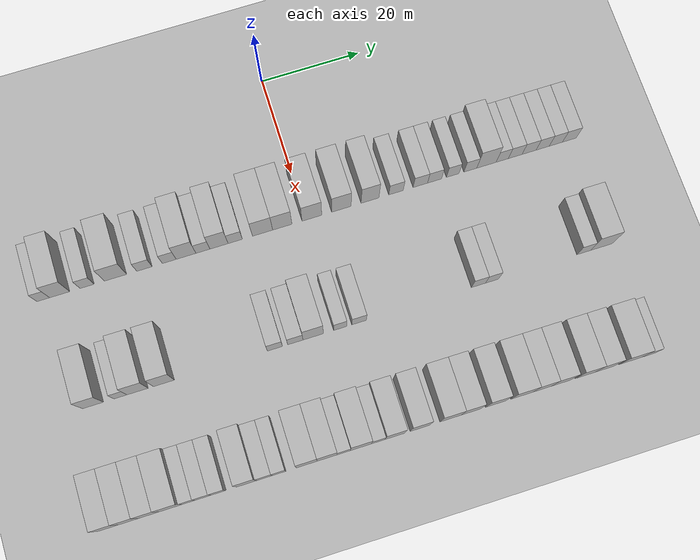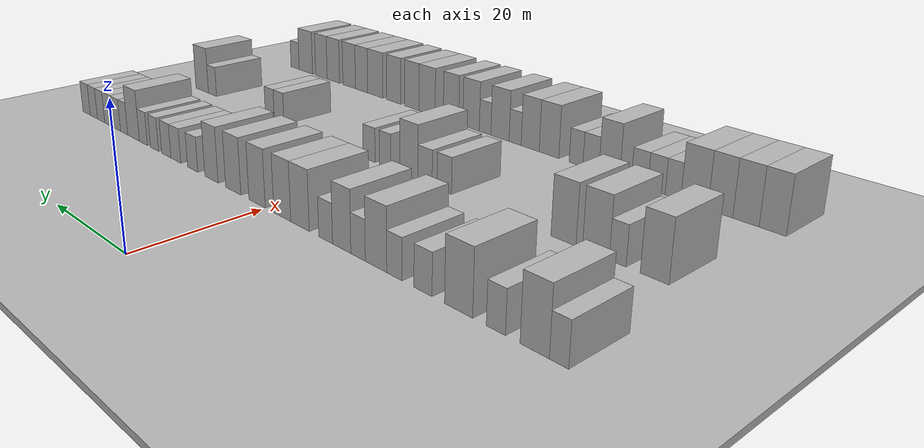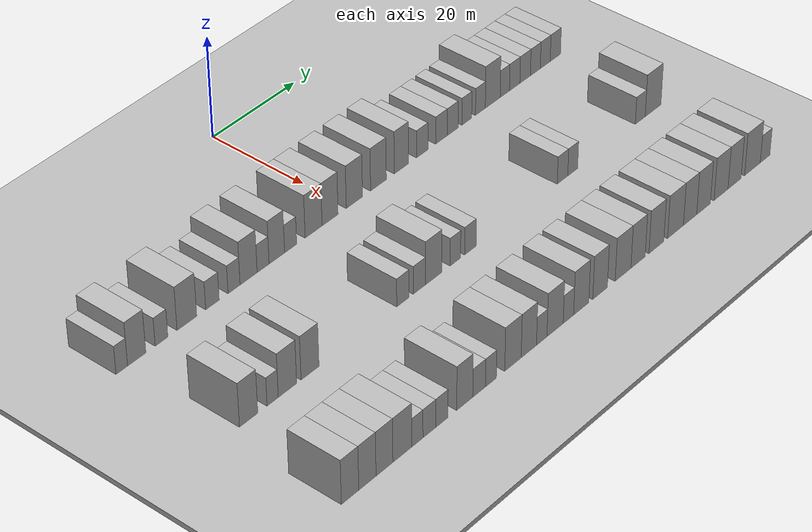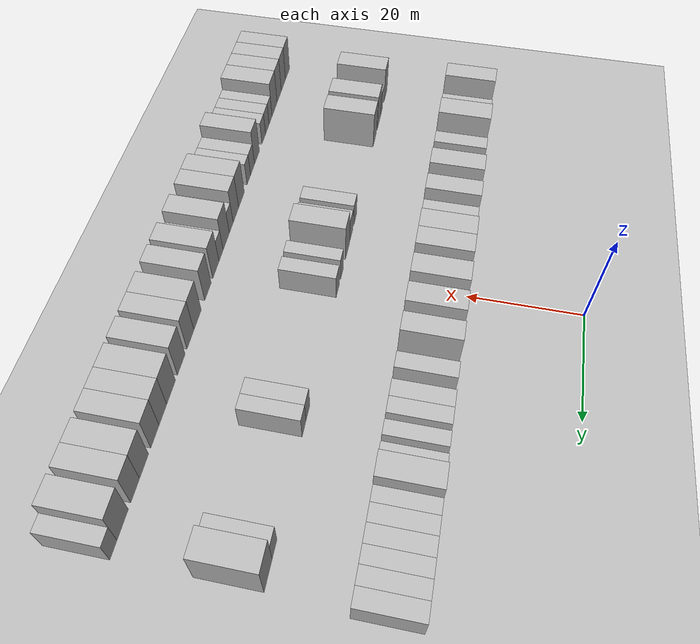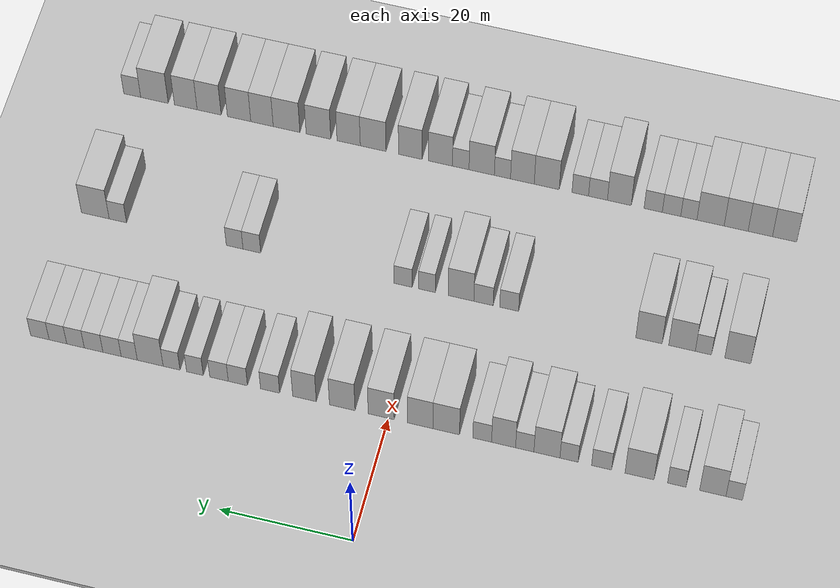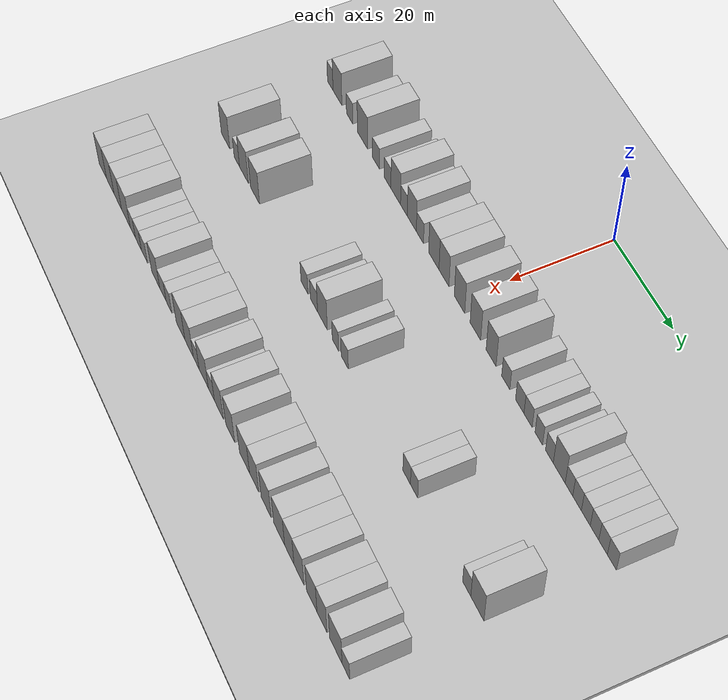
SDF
<sdf version="1.6">
 <world name="default">
  <include><name>ground_plane_1</name><uri>model://HANNAS_ground_plane</uri></include>
  <include>
   <name>ground_plane_2</name>
   <uri>model://HANNAS_ground_plane</uri>
   <pose>100 0 0  0 0 0</pose>
  </include>
  <model name="building_44">
   <static>1</static>
   <pose>25.0000 -51.6898 0 0.000000 0.000000 0.000000</pose>
   <link name="link">
    <pose>0 0 3.00 0 0 0</pose>
    <collision name="collision"><geometry><box><size>10.0000 2.4513 6.0000</size></box></geometry></collision>
    <visual name="visual">
     <cast_shadows>0</cast_shadows>
     <geometry><box><size>10.0000 2.4513 6.0000</size></box></geometry>
     <material>
      <script>
       <uri>model://HANNAS_wall/materials/scripts</uri>
       <uri>model://HANNAS_wall/materials/textures</uri>
       <name>vrc/HANNAS_wall</name>
      </script>
     </material>
    </visual>
   </link>
  </model>
  <model name="building_45">
   <static>1</static>
   <pose>25.0000 -48.5208 0 0.000000 0.000000 0.000000</pose>
   <link name="link">
    <pose>0 0 4.50 0 0 0</pose>
    <collision name="collision"><geometry><box><size>10.0000 3.8866 9.0000</size></box></geometry></collision>
    <visual name="visual">
     <cast_shadows>0</cast_shadows>
     <geometry><box><size>10.0000 3.8866 9.0000</size></box></geometry>
     <material>
      <script>
       <uri>model://HANNAS_wall/materials/scripts</uri>
       <uri>model://HANNAS_wall/materials/textures</uri>
       <name>vrc/HANNAS_wall</name>
      </script>
     </material>
    </visual>
   </link>
  </model>
  <model name="building_46">
   <static>1</static>
   <pose>25.0000 -43.2080 0 0.000000 0.000000 0.000000</pose>
   <link name="link">
    <pose>0 0 3.00 0 0 0</pose>
    <collision name="collision"><geometry><box><size>10.0000 2.7390 6.0000</size></box></geometry></collision>
    <visual name="visual">
     <cast_shadows>0</cast_shadows>
     <geometry><box><size>10.0000 2.7390 6.0000</size></box></geometry>
     <material>
      <script>
       <uri>model://HANNAS_wall/materials/scripts</uri>
       <uri>model://HANNAS_wall/materials/textures</uri>
       <name>vrc/HANNAS_wall</name>
      </script>
     </material>
    </visual>
   </link>
  </model>
  <model name="building_47">
   <static>1</static>
   <pose>25.0000 -37.6801 0 0.000000 0.000000 0.000000</pose>
   <link name="link">
    <pose>0 0 4.50 0 0 0</pose>
    <collision name="collision"><geometry><box><size>10.0000 4.3170 9.0000</size></box></geometry></collision>
    <visual name="visual">
     <cast_shadows>0</cast_shadows>
     <geometry><box><size>10.0000 4.3170 9.0000</size></box></geometry>
     <material>
      <script>
       <uri>model://HANNAS_wall/materials/scripts</uri>
       <uri>model://HANNAS_wall/materials/textures</uri>
       <name>vrc/HANNAS_wall</name>
      </script>
     </material>
    </visual>
   </link>
  </model>
  <model name="building_48">
   <static>1</static>
   <pose>25.0000 -32.0281 0 0.000000 0.000000 0.000000</pose>
   <link name="link">
    <pose>0 0 3.00 0 0 0</pose>
    <collision name="collision"><geometry><box><size>10.0000 2.9870 6.0000</size></box></geometry></collision>
    <visual name="visual">
     <cast_shadows>0</cast_shadows>
     <geometry><box><size>10.0000 2.9870 6.0000</size></box></geometry>
     <material>
      <script>
       <uri>model://HANNAS_wall/materials/scripts</uri>
       <uri>model://HANNAS_wall/materials/textures</uri>
       <name>vrc/HANNAS_wall</name>
      </script>
     </material>
    </visual>
   </link>
  </model>
  <model name="building_49">
   <static>1</static>
   <pose>25.0000 -27.1794 0 0.000000 0.000000 0.000000</pose>
   <link name="link">
    <pose>0 0 3.00 0 0 0</pose>
    <collision name="collision"><geometry><box><size>10.0000 2.7104 6.0000</size></box></geometry></collision>
    <visual name="visual">
     <cast_shadows>0</cast_shadows>
     <geometry><box><size>10.0000 2.7104 6.0000</size></box></geometry>
     <material>
      <script>
       <uri>model://HANNAS_wall/materials/scripts</uri>
       <uri>model://HANNAS_wall/materials/textures</uri>
       <name>vrc/HANNAS_wall</name>
      </script>
     </material>
    </visual>
   </link>
  </model>
  <model name="building_50">
   <static>1</static>
   <pose>25.0000 -23.8731 0 0.000000 0.000000 0.000000</pose>
   <link name="link">
    <pose>0 0 4.50 0 0 0</pose>
    <collision name="collision"><geometry><box><size>10.0000 3.9021 9.0000</size></box></geometry></collision>
    <visual name="visual">
     <cast_shadows>0</cast_shadows>
     <geometry><box><size>10.0000 3.9021 9.0000</size></box></geometry>
     <material>
      <script>
       <uri>model://HANNAS_wall/materials/scripts</uri>
       <uri>model://HANNAS_wall/materials/textures</uri>
       <name>vrc/HANNAS_wall</name>
      </script>
     </material>
    </visual>
   </link>
  </model>
  <model name="building_51">
   <static>1</static>
   <pose>25.0000 -20.5506 0 0.000000 0.000000 0.000000</pose>
   <link name="link">
    <pose>0 0 3.00 0 0 0</pose>
    <collision name="collision"><geometry><box><size>10.0000 2.7430 6.0000</size></box></geometry></collision>
    <visual name="visual">
     <cast_shadows>0</cast_shadows>
     <geometry><box><size>10.0000 2.7430 6.0000</size></box></geometry>
     <material>
      <script>
       <uri>model://HANNAS_wall/materials/scripts</uri>
       <uri>model://HANNAS_wall/materials/textures</uri>
       <name>vrc/HANNAS_wall</name>
      </script>
     </material>
    </visual>
   </link>
  </model>
  <model name="building_52">
   <static>1</static>
   <pose>25.0000 -17.3764 0 0.000000 0.000000 0.000000</pose>
   <link name="link">
    <pose>0 0 4.50 0 0 0</pose>
    <collision name="collision"><geometry><box><size>10.0000 3.6055 9.0000</size></box></geometry></collision>
    <visual name="visual">
     <cast_shadows>0</cast_shadows>
     <geometry><box><size>10.0000 3.6055 9.0000</size></box></geometry>
     <material>
      <script>
       <uri>model://HANNAS_wall/materials/scripts</uri>
       <uri>model://HANNAS_wall/materials/textures</uri>
       <name>vrc/HANNAS_wall</name>
      </script>
     </material>
    </visual>
   </link>
  </model>
  <model name="building_53">
   <static>1</static>
   <pose>25.0000 -14.1619 0 0.000000 0.000000 0.000000</pose>
   <link name="link">
    <pose>0 0 3.00 0 0 0</pose>
    <collision name="collision"><geometry><box><size>10.0000 2.8235 6.0000</size></box></geometry></collision>
    <visual name="visual">
     <cast_shadows>0</cast_shadows>
     <geometry><box><size>10.0000 2.8235 6.0000</size></box></geometry>
     <material>
      <script>
       <uri>model://HANNAS_wall/materials/scripts</uri>
       <uri>model://HANNAS_wall/materials/textures</uri>
       <name>vrc/HANNAS_wall</name>
      </script>
     </material>
    </visual>
   </link>
  </model>
  <model name="building_54">
   <static>1</static>
   <pose>25.0000 -8.7398 0 0.000000 0.000000 0.000000</pose>
   <link name="link">
    <pose>0 0 4.50 0 0 0</pose>
    <collision name="collision"><geometry><box><size>10.0000 4.0207 9.0000</size></box></geometry></collision>
    <visual name="visual">
     <cast_shadows>0</cast_shadows>
     <geometry><box><size>10.0000 4.0207 9.0000</size></box></geometry>
     <material>
      <script>
       <uri>model://HANNAS_wall/materials/scripts</uri>
       <uri>model://HANNAS_wall/materials/textures</uri>
       <name>vrc/HANNAS_wall</name>
      </script>
     </material>
    </visual>
   </link>
  </model>
  <model name="building_55">
   <static>1</static>
   <pose>25.0000 -4.8081 0 0.000000 0.000000 0.000000</pose>
   <link name="link">
    <pose>0 0 4.50 0 0 0</pose>
    <collision name="collision"><geometry><box><size>10.0000 3.8428 9.0000</size></box></geometry></collision>
    <visual name="visual">
     <cast_shadows>0</cast_shadows>
     <geometry><box><size>10.0000 3.8428 9.0000</size></box></geometry>
     <material>
      <script>
       <uri>model://HANNAS_wall/materials/scripts</uri>
       <uri>model://HANNAS_wall/materials/textures</uri>
       <name>vrc/HANNAS_wall</name>
      </script>
     </material>
    </visual>
   </link>
  </model>
  <model name="building_56">
   <static>1</static>
   <pose>25.0000 1.0844 0 0.000000 0.000000 0.000000</pose>
   <link name="link">
    <pose>0 0 4.50 0 0 0</pose>
    <collision name="collision"><geometry><box><size>10.0000 3.9421 9.0000</size></box></geometry></collision>
    <visual name="visual">
     <cast_shadows>0</cast_shadows>
     <geometry><box><size>10.0000 3.9421 9.0000</size></box></geometry>
     <material>
      <script>
       <uri>model://HANNAS_wall/materials/scripts</uri>
       <uri>model://HANNAS_wall/materials/textures</uri>
       <name>vrc/HANNAS_wall</name>
      </script>
     </material>
    </visual>
   </link>
  </model>
  <model name="building_57">
   <static>1</static>
   <pose>25.0000 7.0039 0 0.000000 0.000000 0.000000</pose>
   <link name="link">
    <pose>0 0 4.50 0 0 0</pose>
    <collision name="collision"><geometry><box><size>10.0000 3.8968 9.0000</size></box></geometry></collision>
    <visual name="visual">
     <cast_shadows>0</cast_shadows>
     <geometry><box><size>10.0000 3.8968 9.0000</size></box></geometry>
     <material>
      <script>
       <uri>model://HANNAS_wall/materials/scripts</uri>
       <uri>model://HANNAS_wall/materials/textures</uri>
       <name>vrc/HANNAS_wall</name>
      </script>
     </material>
    </visual>
   </link>
  </model>
  <model name="building_58">
   <static>1</static>
   <pose>25.0000 12.7543 0 0.000000 0.000000 0.000000</pose>
   <link name="link">
    <pose>0 0 4.50 0 0 0</pose>
    <collision name="collision"><geometry><box><size>10.0000 3.6041 9.0000</size></box></geometry></collision>
    <visual name="visual">
     <cast_shadows>0</cast_shadows>
     <geometry><box><size>10.0000 3.6041 9.0000</size></box></geometry>
     <material>
      <script>
       <uri>model://HANNAS_wall/materials/scripts</uri>
       <uri>model://HANNAS_wall/materials/textures</uri>
       <name>vrc/HANNAS_wall</name>
      </script>
     </material>
    </visual>
   </link>
  </model>
  <model name="building_59">
   <static>1</static>
   <pose>25.0000 18.0167 0 0.000000 0.000000 0.000000</pose>
   <link name="link">
    <pose>0 0 3.00 0 0 0</pose>
    <collision name="collision"><geometry><box><size>10.0000 2.9206 6.0000</size></box></geometry></collision>
    <visual name="visual">
     <cast_shadows>0</cast_shadows>
     <geometry><box><size>10.0000 2.9206 6.0000</size></box></geometry>
     <material>
      <script>
       <uri>model://HANNAS_wall/materials/scripts</uri>
       <uri>model://HANNAS_wall/materials/textures</uri>
       <name>vrc/HANNAS_wall</name>
      </script>
     </material>
    </visual>
   </link>
  </model>
  <model name="building_60">
   <static>1</static>
   <pose>25.0000 22.9509 0 0.000000 0.000000 0.000000</pose>
   <link name="link">
    <pose>0 0 3.00 0 0 0</pose>
    <collision name="collision"><geometry><box><size>10.0000 2.9479 6.0000</size></box></geometry></collision>
    <visual name="visual">
     <cast_shadows>0</cast_shadows>
     <geometry><box><size>10.0000 2.9479 6.0000</size></box></geometry>
     <material>
      <script>
       <uri>model://HANNAS_wall/materials/scripts</uri>
       <uri>model://HANNAS_wall/materials/textures</uri>
       <name>vrc/HANNAS_wall</name>
      </script>
     </material>
    </visual>
   </link>
  </model>
  <model name="building_61">
   <static>1</static>
   <pose>25.0000 25.8441 0 0.000000 0.000000 0.000000</pose>
   <link name="link">
    <pose>0 0 3.00 0 0 0</pose>
    <collision name="collision"><geometry><box><size>10.0000 2.8384 6.0000</size></box></geometry></collision>
    <visual name="visual">
     <cast_shadows>0</cast_shadows>
     <geometry><box><size>10.0000 2.8384 6.0000</size></box></geometry>
     <material>
      <script>
       <uri>model://HANNAS_wall/materials/scripts</uri>
       <uri>model://HANNAS_wall/materials/textures</uri>
       <name>vrc/HANNAS_wall</name>
      </script>
     </material>
    </visual>
   </link>
  </model>
  <model name="building_62">
   <static>1</static>
   <pose>25.0000 29.5517 0 0.000000 0.000000 0.000000</pose>
   <link name="link">
    <pose>0 0 3.00 0 0 0</pose>
    <collision name="collision"><geometry><box><size>10.0000 2.5768 6.0000</size></box></geometry></collision>
    <visual name="visual">
     <cast_shadows>0</cast_shadows>
     <geometry><box><size>10.0000 2.5768 6.0000</size></box></geometry>
     <material>
      <script>
       <uri>model://HANNAS_wall/materials/scripts</uri>
       <uri>model://HANNAS_wall/materials/textures</uri>
       <name>vrc/HANNAS_wall</name>
      </script>
     </material>
    </visual>
   </link>
  </model>
  <model name="building_63">
   <static>1</static>
   <pose>25.0000 33.1496 0 0.000000 0.000000 0.000000</pose>
   <link name="link">
    <pose>0 0 3.00 0 0 0</pose>
    <collision name="collision"><geometry><box><size>10.0000 2.6190 6.0000</size></box></geometry></collision>
    <visual name="visual">
     <cast_shadows>0</cast_shadows>
     <geometry><box><size>10.0000 2.6190 6.0000</size></box></geometry>
     <material>
      <script>
       <uri>model://HANNAS_wall/materials/scripts</uri>
       <uri>model://HANNAS_wall/materials/textures</uri>
       <name>vrc/HANNAS_wall</name>
      </script>
     </material>
    </visual>
   </link>
  </model>
  <model name="building_64">
   <static>1</static>
   <pose>25.0000 36.4508 0 0.000000 0.000000 0.000000</pose>
   <link name="link">
    <pose>0 0 4.50 0 0 0</pose>
    <collision name="collision"><geometry><box><size>10.0000 3.9833 9.0000</size></box></geometry></collision>
    <visual name="visual">
     <cast_shadows>0</cast_shadows>
     <geometry><box><size>10.0000 3.9833 9.0000</size></box></geometry>
     <material>
      <script>
       <uri>model://HANNAS_wall/materials/scripts</uri>
       <uri>model://HANNAS_wall/materials/textures</uri>
       <name>vrc/HANNAS_wall</name>
      </script>
     </material>
    </visual>
   </link>
  </model>
  <model name="building_65">
   <static>1</static>
   <pose>25.0000 39.6901 0 0.000000 0.000000 0.000000</pose>
   <link name="link">
    <pose>0 0 3.00 0 0 0</pose>
    <collision name="collision"><geometry><box><size>10.0000 2.4955 6.0000</size></box></geometry></collision>
    <visual name="visual">
     <cast_shadows>0</cast_shadows>
     <geometry><box><size>10.0000 2.4955 6.0000</size></box></geometry>
     <material>
      <script>
       <uri>model://HANNAS_wall/materials/scripts</uri>
       <uri>model://HANNAS_wall/materials/textures</uri>
       <name>vrc/HANNAS_wall</name>
      </script>
     </material>
    </visual>
   </link>
  </model>
  <model name="building_66">
   <static>1</static>
   <pose>25.0000 42.3571 0 0.000000 0.000000 0.000000</pose>
   <link name="link">
    <pose>0 0 3.00 0 0 0</pose>
    <collision name="collision"><geometry><box><size>10.0000 2.8384 6.0000</size></box></geometry></collision>
    <visual name="visual">
     <cast_shadows>0</cast_shadows>
     <geometry><box><size>10.0000 2.8384 6.0000</size></box></geometry>
     <material>
      <script>
       <uri>model://HANNAS_wall/materials/scripts</uri>
       <uri>model://HANNAS_wall/materials/textures</uri>
       <name>vrc/HANNAS_wall</name>
      </script>
     </material>
    </visual>
   </link>
  </model>
  <model name="building_67">
   <static>1</static>
   <pose>25.0000 45.2196 0 0.000000 0.000000 0.000000</pose>
   <link name="link">
    <pose>0 0 3.00 0 0 0</pose>
    <collision name="collision"><geometry><box><size>10.0000 2.8865 6.0000</size></box></geometry></collision>
    <visual name="visual">
     <cast_shadows>0</cast_shadows>
     <geometry><box><size>10.0000 2.8865 6.0000</size></box></geometry>
     <material>
      <script>
       <uri>model://HANNAS_wall/materials/scripts</uri>
       <uri>model://HANNAS_wall/materials/textures</uri>
       <name>vrc/HANNAS_wall</name>
      </script>
     </material>
    </visual>
   </link>
  </model>
  <model name="building_68">
   <static>1</static>
   <pose>25.0000 48.0282 0 0.000000 0.000000 0.000000</pose>
   <link name="link">
    <pose>0 0 3.00 0 0 0</pose>
    <collision name="collision"><geometry><box><size>10.0000 2.7308 6.0000</size></box></geometry></collision>
    <visual name="visual">
     <cast_shadows>0</cast_shadows>
     <geometry><box><size>10.0000 2.7308 6.0000</size></box></geometry>
     <material>
      <script>
       <uri>model://HANNAS_wall/materials/scripts</uri>
       <uri>model://HANNAS_wall/materials/textures</uri>
       <name>vrc/HANNAS_wall</name>
      </script>
     </material>
    </visual>
   </link>
  </model>
  <model name="building_69">
   <static>1</static>
   <pose>25.0000 50.7630 0 0.000000 0.000000 0.000000</pose>
   <link name="link">
    <pose>0 0 3.00 0 0 0</pose>
    <collision name="collision"><geometry><box><size>10.0000 2.7389 6.0000</size></box></geometry></collision>
    <visual name="visual">
     <cast_shadows>0</cast_shadows>
     <geometry><box><size>10.0000 2.7389 6.0000</size></box></geometry>
     <material>
      <script>
       <uri>model://HANNAS_wall/materials/scripts</uri>
       <uri>model://HANNAS_wall/materials/textures</uri>
       <name>vrc/HANNAS_wall</name>
      </script>
     </material>
    </visual>
   </link>
  </model>
  <model name="building_70">
   <static>1</static>
   <pose>25.0000 53.5651 0 0.000000 0.000000 0.000000</pose>
   <link name="link">
    <pose>0 0 3.00 0 0 0</pose>
    <collision name="collision"><geometry><box><size>10.0000 2.8652 6.0000</size></box></geometry></collision>
    <visual name="visual">
     <cast_shadows>0</cast_shadows>
     <geometry><box><size>10.0000 2.8652 6.0000</size></box></geometry>
     <material>
      <script>
       <uri>model://HANNAS_wall/materials/scripts</uri>
       <uri>model://HANNAS_wall/materials/textures</uri>
       <name>vrc/HANNAS_wall</name>
      </script>
     </material>
    </visual>
   </link>
  </model>
  <model name="building_166">
   <static>1</static>
   <pose>47.0000 -47.7171 0 0.000000 0.000000 0.000000</pose>
   <link name="link">
    <pose>0 0 4.50 0 0 0</pose>
    <collision name="collision"><geometry><box><size>10.0000 3.9387 9.0000</size></box></geometry></collision>
    <visual name="visual">
     <cast_shadows>0</cast_shadows>
     <geometry><box><size>10.0000 3.9387 9.0000</size></box></geometry>
     <material>
      <script>
       <uri>model://HANNAS_wall/materials/scripts</uri>
       <uri>model://HANNAS_wall/materials/textures</uri>
       <name>vrc/HANNAS_wall</name>
      </script>
     </material>
    </visual>
   </link>
  </model>
  <model name="building_167">
   <static>1</static>
   <pose>47.0000 -42.5212 0 0.000000 0.000000 0.000000</pose>
   <link name="link">
    <pose>0 0 3.00 0 0 0</pose>
    <collision name="collision"><geometry><box><size>10.0000 2.4531 6.0000</size></box></geometry></collision>
    <visual name="visual">
     <cast_shadows>0</cast_shadows>
     <geometry><box><size>10.0000 2.4531 6.0000</size></box></geometry>
     <material>
      <script>
       <uri>model://HANNAS_wall/materials/scripts</uri>
       <uri>model://HANNAS_wall/materials/textures</uri>
       <name>vrc/HANNAS_wall</name>
      </script>
     </material>
    </visual>
   </link>
  </model>
  <model name="building_168">
   <static>1</static>
   <pose>47.0000 -39.2783 0 0.000000 0.000000 0.000000</pose>
   <link name="link">
    <pose>0 0 4.50 0 0 0</pose>
    <collision name="collision"><geometry><box><size>10.0000 4.0327 9.0000</size></box></geometry></collision>
    <visual name="visual">
     <cast_shadows>0</cast_shadows>
     <geometry><box><size>10.0000 4.0327 9.0000</size></box></geometry>
     <material>
      <script>
       <uri>model://HANNAS_wall/materials/scripts</uri>
       <uri>model://HANNAS_wall/materials/textures</uri>
       <name>vrc/HANNAS_wall</name>
      </script>
     </material>
    </visual>
   </link>
  </model>
  <model name="building_169">
   <static>1</static>
   <pose>47.0000 -34.2605 0 0.000000 0.000000 0.000000</pose>
   <link name="link">
    <pose>0 0 4.50 0 0 0</pose>
    <collision name="collision"><geometry><box><size>10.0000 4.0029 9.0000</size></box></geometry></collision>
    <visual name="visual">
     <cast_shadows>0</cast_shadows>
     <geometry><box><size>10.0000 4.0029 9.0000</size></box></geometry>
     <material>
      <script>
       <uri>model://HANNAS_wall/materials/scripts</uri>
       <uri>model://HANNAS_wall/materials/textures</uri>
       <name>vrc/HANNAS_wall</name>
      </script>
     </material>
    </visual>
   </link>
  </model>
  <model name="building_170">
   <static>1</static>
   <pose>47.0000 -12.8790 0 0.000000 0.000000 0.000000</pose>
   <link name="link">
    <pose>0 0 3.00 0 0 0</pose>
    <collision name="collision"><geometry><box><size>10.0000 2.9200 6.0000</size></box></geometry></collision>
    <visual name="visual">
     <cast_shadows>0</cast_shadows>
     <geometry><box><size>10.0000 2.9200 6.0000</size></box></geometry>
     <material>
      <script>
       <uri>model://HANNAS_wall/materials/scripts</uri>
       <uri>model://HANNAS_wall/materials/textures</uri>
       <name>vrc/HANNAS_wall</name>
      </script>
     </material>
    </visual>
   </link>
  </model>
  <model name="building_171">
   <static>1</static>
   <pose>47.0000 -8.9310 0 0.000000 0.000000 0.000000</pose>
   <link name="link">
    <pose>0 0 3.00 0 0 0</pose>
    <collision name="collision"><geometry><box><size>10.0000 2.9759 6.0000</size></box></geometry></collision>
    <visual name="visual">
     <cast_shadows>0</cast_shadows>
     <geometry><box><size>10.0000 2.9759 6.0000</size></box></geometry>
     <material>
      <script>
       <uri>model://HANNAS_wall/materials/scripts</uri>
       <uri>model://HANNAS_wall/materials/textures</uri>
       <name>vrc/HANNAS_wall</name>
      </script>
     </material>
    </visual>
   </link>
  </model>
  <model name="building_172">
   <static>1</static>
   <pose>47.0000 -5.4634 0 0.000000 0.000000 0.000000</pose>
   <link name="link">
    <pose>0 0 4.50 0 0 0</pose>
    <collision name="collision"><geometry><box><size>10.0000 3.9594 9.0000</size></box></geometry></collision>
    <visual name="visual">
     <cast_shadows>0</cast_shadows>
     <geometry><box><size>10.0000 3.9594 9.0000</size></box></geometry>
     <material>
      <script>
       <uri>model://HANNAS_wall/materials/scripts</uri>
       <uri>model://HANNAS_wall/materials/textures</uri>
       <name>vrc/HANNAS_wall</name>
      </script>
     </material>
    </visual>
   </link>
  </model>
  <model name="building_173">
   <static>1</static>
   <pose>47.0000 -0.2046 0 0.000000 0.000000 0.000000</pose>
   <link name="link">
    <pose>0 0 3.00 0 0 0</pose>
    <collision name="collision"><geometry><box><size>10.0000 2.5582 6.0000</size></box></geometry></collision>
    <visual name="visual">
     <cast_shadows>0</cast_shadows>
     <geometry><box><size>10.0000 2.5582 6.0000</size></box></geometry>
     <material>
      <script>
       <uri>model://HANNAS_wall/materials/scripts</uri>
       <uri>model://HANNAS_wall/materials/textures</uri>
       <name>vrc/HANNAS_wall</name>
      </script>
     </material>
    </visual>
   </link>
  </model>
  <model name="building_174">
   <static>1</static>
   <pose>47.0000 3.4943 0 0.000000 0.000000 0.000000</pose>
   <link name="link">
    <pose>0 0 3.00 0 0 0</pose>
    <collision name="collision"><geometry><box><size>10.0000 2.8395 6.0000</size></box></geometry></collision>
    <visual name="visual">
     <cast_shadows>0</cast_shadows>
     <geometry><box><size>10.0000 2.8395 6.0000</size></box></geometry>
     <material>
      <script>
       <uri>model://HANNAS_wall/materials/scripts</uri>
       <uri>model://HANNAS_wall/materials/textures</uri>
       <name>vrc/HANNAS_wall</name>
      </script>
     </material>
    </visual>
   </link>
  </model>
  <model name="building_175">
   <static>1</static>
   <pose>47.0000 27.0960 0 0.000000 0.000000 0.000000</pose>
   <link name="link">
    <pose>0 0 3.00 0 0 0</pose>
    <collision name="collision"><geometry><box><size>10.0000 2.7879 6.0000</size></box></geometry></collision>
    <visual name="visual">
     <cast_shadows>0</cast_shadows>
     <geometry><box><size>10.0000 2.7879 6.0000</size></box></geometry>
     <material>
      <script>
       <uri>model://HANNAS_wall/materials/scripts</uri>
       <uri>model://HANNAS_wall/materials/textures</uri>
       <name>vrc/HANNAS_wall</name>
      </script>
     </material>
    </visual>
   </link>
  </model>
  <model name="building_176">
   <static>1</static>
   <pose>47.0000 29.8046 0 0.000000 0.000000 0.000000</pose>
   <link name="link">
    <pose>0 0 3.00 0 0 0</pose>
    <collision name="collision"><geometry><box><size>10.0000 2.6294 6.0000</size></box></geometry></collision>
    <visual name="visual">
     <cast_shadows>0</cast_shadows>
     <geometry><box><size>10.0000 2.6294 6.0000</size></box></geometry>
     <material>
      <script>
       <uri>model://HANNAS_wall/materials/scripts</uri>
       <uri>model://HANNAS_wall/materials/textures</uri>
       <name>vrc/HANNAS_wall</name>
      </script>
     </material>
    </visual>
   </link>
  </model>
  <model name="building_177">
   <static>1</static>
   <pose>47.0000 48.2622 0 0.000000 0.000000 0.000000</pose>
   <link name="link">
    <pose>0 0 3.00 0 0 0</pose>
    <collision name="collision"><geometry><box><size>10.0000 2.7619 6.0000</size></box></geometry></collision>
    <visual name="visual">
     <cast_shadows>0</cast_shadows>
     <geometry><box><size>10.0000 2.7619 6.0000</size></box></geometry>
     <material>
      <script>
       <uri>model://HANNAS_wall/materials/scripts</uri>
       <uri>model://HANNAS_wall/materials/textures</uri>
       <name>vrc/HANNAS_wall</name>
      </script>
     </material>
    </visual>
   </link>
  </model>
  <model name="building_178">
   <static>1</static>
   <pose>47.0000 51.8512 0 0.000000 0.000000 0.000000</pose>
   <link name="link">
    <pose>0 0 4.50 0 0 0</pose>
    <collision name="collision"><geometry><box><size>10.0000 4.4161 9.0000</size></box></geometry></collision>
    <visual name="visual">
     <cast_shadows>0</cast_shadows>
     <geometry><box><size>10.0000 4.4161 9.0000</size></box></geometry>
     <material>
      <script>
       <uri>model://HANNAS_wall/materials/scripts</uri>
       <uri>model://HANNAS_wall/materials/textures</uri>
       <name>vrc/HANNAS_wall</name>
      </script>
     </material>
    </visual>
   </link>
  </model>
  <model name="building_269">
   <static>1</static>
   <pose>69.0000 -50.4471 0 0.000000 0.000000 0.000000</pose>
   <link name="link">
    <pose>0 0 4.50 0 0 0</pose>
    <collision name="collision"><geometry><box><size>10.0000 3.7425 9.0000</size></box></geometry></collision>
    <visual name="visual">
     <cast_shadows>0</cast_shadows>
     <geometry><box><size>10.0000 3.7425 9.0000</size></box></geometry>
     <material>
      <script>
       <uri>model://HANNAS_wall/materials/scripts</uri>
       <uri>model://HANNAS_wall/materials/textures</uri>
       <name>vrc/HANNAS_wall</name>
      </script>
     </material>
    </visual>
   </link>
  </model>
  <model name="building_270">
   <static>1</static>
   <pose>69.0000 -46.6944 0 0.000000 0.000000 0.000000</pose>
   <link name="link">
    <pose>0 0 4.50 0 0 0</pose>
    <collision name="collision"><geometry><box><size>10.0000 3.7630 9.0000</size></box></geometry></collision>
    <visual name="visual">
     <cast_shadows>0</cast_shadows>
     <geometry><box><size>10.0000 3.7630 9.0000</size></box></geometry>
     <material>
      <script>
       <uri>model://HANNAS_wall/materials/scripts</uri>
       <uri>model://HANNAS_wall/materials/textures</uri>
       <name>vrc/HANNAS_wall</name>
      </script>
     </material>
    </visual>
   </link>
  </model>
  <model name="building_271">
   <static>1</static>
   <pose>69.0000 -42.9624 0 0.000000 0.000000 0.000000</pose>
   <link name="link">
    <pose>0 0 4.50 0 0 0</pose>
    <collision name="collision"><geometry><box><size>10.0000 3.7010 9.0000</size></box></geometry></collision>
    <visual name="visual">
     <cast_shadows>0</cast_shadows>
     <geometry><box><size>10.0000 3.7010 9.0000</size></box></geometry>
     <material>
      <script>
       <uri>model://HANNAS_wall/materials/scripts</uri>
       <uri>model://HANNAS_wall/materials/textures</uri>
       <name>vrc/HANNAS_wall</name>
      </script>
     </material>
    </visual>
   </link>
  </model>
  <model name="building_272">
   <static>1</static>
   <pose>69.0000 -39.0024 0 0.000000 0.000000 0.000000</pose>
   <link name="link">
    <pose>0 0 4.50 0 0 0</pose>
    <collision name="collision"><geometry><box><size>10.0000 4.2189 9.0000</size></box></geometry></collision>
    <visual name="visual">
     <cast_shadows>0</cast_shadows>
     <geometry><box><size>10.0000 4.2189 9.0000</size></box></geometry>
     <material>
      <script>
       <uri>model://HANNAS_wall/materials/scripts</uri>
       <uri>model://HANNAS_wall/materials/textures</uri>
       <name>vrc/HANNAS_wall</name>
      </script>
     </material>
    </visual>
   </link>
  </model>
  <model name="building_273">
   <static>1</static>
   <pose>69.0000 -35.6404 0 0.000000 0.000000 0.000000</pose>
   <link name="link">
    <pose>0 0 3.00 0 0 0</pose>
    <collision name="collision"><geometry><box><size>10.0000 2.5051 6.0000</size></box></geometry></collision>
    <visual name="visual">
     <cast_shadows>0</cast_shadows>
     <geometry><box><size>10.0000 2.5051 6.0000</size></box></geometry>
     <material>
      <script>
       <uri>model://HANNAS_wall/materials/scripts</uri>
       <uri>model://HANNAS_wall/materials/textures</uri>
       <name>vrc/HANNAS_wall</name>
      </script>
     </material>
    </visual>
   </link>
  </model>
  <model name="building_274">
   <static>1</static>
   <pose>69.0000 -32.9544 0 0.000000 0.000000 0.000000</pose>
   <link name="link">
    <pose>0 0 3.00 0 0 0</pose>
    <collision name="collision"><geometry><box><size>10.0000 2.8669 6.0000</size></box></geometry></collision>
    <visual name="visual">
     <cast_shadows>0</cast_shadows>
     <geometry><box><size>10.0000 2.8669 6.0000</size></box></geometry>
     <material>
      <script>
       <uri>model://HANNAS_wall/materials/scripts</uri>
       <uri>model://HANNAS_wall/materials/textures</uri>
       <name>vrc/HANNAS_wall</name>
      </script>
     </material>
    </visual>
   </link>
  </model>
  <model name="building_275">
   <static>1</static>
   <pose>69.0000 -30.1014 0 0.000000 0.000000 0.000000</pose>
   <link name="link">
    <pose>0 0 3.00 0 0 0</pose>
    <collision name="collision"><geometry><box><size>10.0000 2.8390 6.0000</size></box></geometry></collision>
    <visual name="visual">
     <cast_shadows>0</cast_shadows>
     <geometry><box><size>10.0000 2.8390 6.0000</size></box></geometry>
     <material>
      <script>
       <uri>model://HANNAS_wall/materials/scripts</uri>
       <uri>model://HANNAS_wall/materials/textures</uri>
       <name>vrc/HANNAS_wall</name>
      </script>
     </material>
    </visual>
   </link>
  </model>
  <model name="building_276">
   <static>1</static>
   <pose>69.0000 -24.8190 0 0.000000 0.000000 0.000000</pose>
   <link name="link">
    <pose>0 0 4.50 0 0 0</pose>
    <collision name="collision"><geometry><box><size>10.0000 3.7257 9.0000</size></box></geometry></collision>
    <visual name="visual">
     <cast_shadows>0</cast_shadows>
     <geometry><box><size>10.0000 3.7257 9.0000</size></box></geometry>
     <material>
      <script>
       <uri>model://HANNAS_wall/materials/scripts</uri>
       <uri>model://HANNAS_wall/materials/textures</uri>
       <name>vrc/HANNAS_wall</name>
      </script>
     </material>
    </visual>
   </link>
  </model>
  <model name="building_277">
   <static>1</static>
   <pose>69.0000 -21.4785 0 0.000000 0.000000 0.000000</pose>
   <link name="link">
    <pose>0 0 3.00 0 0 0</pose>
    <collision name="collision"><geometry><box><size>10.0000 2.9555 6.0000</size></box></geometry></collision>
    <visual name="visual">
     <cast_shadows>0</cast_shadows>
     <geometry><box><size>10.0000 2.9555 6.0000</size></box></geometry>
     <material>
      <script>
       <uri>model://HANNAS_wall/materials/scripts</uri>
       <uri>model://HANNAS_wall/materials/textures</uri>
       <name>vrc/HANNAS_wall</name>
      </script>
     </material>
    </visual>
   </link>
  </model>
  <model name="building_278">
   <static>1</static>
   <pose>69.0000 -18.7074 0 0.000000 0.000000 0.000000</pose>
   <link name="link">
    <pose>0 0 3.00 0 0 0</pose>
    <collision name="collision"><geometry><box><size>10.0000 2.5867 6.0000</size></box></geometry></collision>
    <visual name="visual">
     <cast_shadows>0</cast_shadows>
     <geometry><box><size>10.0000 2.5867 6.0000</size></box></geometry>
     <material>
      <script>
       <uri>model://HANNAS_wall/materials/scripts</uri>
       <uri>model://HANNAS_wall/materials/textures</uri>
       <name>vrc/HANNAS_wall</name>
      </script>
     </material>
    </visual>
   </link>
  </model>
  <model name="building_279">
   <static>1</static>
   <pose>69.0000 -13.4509 0 0.000000 0.000000 0.000000</pose>
   <link name="link">
    <pose>0 0 4.50 0 0 0</pose>
    <collision name="collision"><geometry><box><size>10.0000 3.9263 9.0000</size></box></geometry></collision>
    <visual name="visual">
     <cast_shadows>0</cast_shadows>
     <geometry><box><size>10.0000 3.9263 9.0000</size></box></geometry>
     <material>
      <script>
       <uri>model://HANNAS_wall/materials/scripts</uri>
       <uri>model://HANNAS_wall/materials/textures</uri>
       <name>vrc/HANNAS_wall</name>
      </script>
     </material>
    </visual>
   </link>
  </model>
  <model name="building_280">
   <static>1</static>
   <pose>69.0000 -9.6237 0 0.000000 0.000000 0.000000</pose>
   <link name="link">
    <pose>0 0 4.50 0 0 0</pose>
    <collision name="collision"><geometry><box><size>10.0000 3.7281 9.0000</size></box></geometry></collision>
    <visual name="visual">
     <cast_shadows>0</cast_shadows>
     <geometry><box><size>10.0000 3.7281 9.0000</size></box></geometry>
     <material>
      <script>
       <uri>model://HANNAS_wall/materials/scripts</uri>
       <uri>model://HANNAS_wall/materials/textures</uri>
       <name>vrc/HANNAS_wall</name>
      </script>
     </material>
    </visual>
   </link>
  </model>
  <model name="building_281">
   <static>1</static>
   <pose>69.0000 -6.4860 0 0.000000 0.000000 0.000000</pose>
   <link name="link">
    <pose>0 0 3.00 0 0 0</pose>
    <collision name="collision"><geometry><box><size>10.0000 2.5474 6.0000</size></box></geometry></collision>
    <visual name="visual">
     <cast_shadows>0</cast_shadows>
     <geometry><box><size>10.0000 2.5474 6.0000</size></box></geometry>
     <material>
      <script>
       <uri>model://HANNAS_wall/materials/scripts</uri>
       <uri>model://HANNAS_wall/materials/textures</uri>
       <name>vrc/HANNAS_wall</name>
      </script>
     </material>
    </visual>
   </link>
  </model>
  <model name="building_282">
   <static>1</static>
   <pose>69.0000 -3.2137 0 0.000000 0.000000 0.000000</pose>
   <link name="link">
    <pose>0 0 4.50 0 0 0</pose>
    <collision name="collision"><geometry><box><size>10.0000 3.9972 9.0000</size></box></geometry></collision>
    <visual name="visual">
     <cast_shadows>0</cast_shadows>
     <geometry><box><size>10.0000 3.9972 9.0000</size></box></geometry>
     <material>
      <script>
       <uri>model://HANNAS_wall/materials/scripts</uri>
       <uri>model://HANNAS_wall/materials/textures</uri>
       <name>vrc/HANNAS_wall</name>
      </script>
     </material>
    </visual>
   </link>
  </model>
  <model name="building_283">
   <static>1</static>
   <pose>69.0000 0.0893 0 0.000000 0.000000 0.000000</pose>
   <link name="link">
    <pose>0 0 3.00 0 0 0</pose>
    <collision name="collision"><geometry><box><size>10.0000 2.6089 6.0000</size></box></geometry></collision>
    <visual name="visual">
     <cast_shadows>0</cast_shadows>
     <geometry><box><size>10.0000 2.6089 6.0000</size></box></geometry>
     <material>
      <script>
       <uri>model://HANNAS_wall/materials/scripts</uri>
       <uri>model://HANNAS_wall/materials/textures</uri>
       <name>vrc/HANNAS_wall</name>
      </script>
     </material>
    </visual>
   </link>
  </model>
  <model name="building_284">
   <static>1</static>
   <pose>69.0000 3.3002 0 0.000000 0.000000 0.000000</pose>
   <link name="link">
    <pose>0 0 4.50 0 0 0</pose>
    <collision name="collision"><geometry><box><size>10.0000 3.8129 9.0000</size></box></geometry></collision>
    <visual name="visual">
     <cast_shadows>0</cast_shadows>
     <geometry><box><size>10.0000 3.8129 9.0000</size></box></geometry>
     <material>
      <script>
       <uri>model://HANNAS_wall/materials/scripts</uri>
       <uri>model://HANNAS_wall/materials/textures</uri>
       <name>vrc/HANNAS_wall</name>
      </script>
     </material>
    </visual>
   </link>
  </model>
  <model name="building_285">
   <static>1</static>
   <pose>69.0000 8.0736 0 0.000000 0.000000 0.000000</pose>
   <link name="link">
    <pose>0 0 4.50 0 0 0</pose>
    <collision name="collision"><geometry><box><size>10.0000 3.7339 9.0000</size></box></geometry></collision>
    <visual name="visual">
     <cast_shadows>0</cast_shadows>
     <geometry><box><size>10.0000 3.7339 9.0000</size></box></geometry>
     <material>
      <script>
       <uri>model://HANNAS_wall/materials/scripts</uri>
       <uri>model://HANNAS_wall/materials/textures</uri>
       <name>vrc/HANNAS_wall</name>
      </script>
     </material>
    </visual>
   </link>
  </model>
  <model name="building_286">
   <static>1</static>
   <pose>69.0000 13.9887 0 0.000000 0.000000 0.000000</pose>
   <link name="link">
    <pose>0 0 4.50 0 0 0</pose>
    <collision name="collision"><geometry><box><size>10.0000 4.0964 9.0000</size></box></geometry></collision>
    <visual name="visual">
     <cast_shadows>0</cast_shadows>
     <geometry><box><size>10.0000 4.0964 9.0000</size></box></geometry>
     <material>
      <script>
       <uri>model://HANNAS_wall/materials/scripts</uri>
       <uri>model://HANNAS_wall/materials/textures</uri>
       <name>vrc/HANNAS_wall</name>
      </script>
     </material>
    </visual>
   </link>
  </model>
  <model name="building_287">
   <static>1</static>
   <pose>69.0000 17.8945 0 0.000000 0.000000 0.000000</pose>
   <link name="link">
    <pose>0 0 4.50 0 0 0</pose>
    <collision name="collision"><geometry><box><size>10.0000 3.7152 9.0000</size></box></geometry></collision>
    <visual name="visual">
     <cast_shadows>0</cast_shadows>
     <geometry><box><size>10.0000 3.7152 9.0000</size></box></geometry>
     <material>
      <script>
       <uri>model://HANNAS_wall/materials/scripts</uri>
       <uri>model://HANNAS_wall/materials/textures</uri>
       <name>vrc/HANNAS_wall</name>
      </script>
     </material>
    </visual>
   </link>
  </model>
  <model name="building_288">
   <static>1</static>
   <pose>69.0000 22.7218 0 0.000000 0.000000 0.000000</pose>
   <link name="link">
    <pose>0 0 4.50 0 0 0</pose>
    <collision name="collision"><geometry><box><size>10.0000 3.9394 9.0000</size></box></geometry></collision>
    <visual name="visual">
     <cast_shadows>0</cast_shadows>
     <geometry><box><size>10.0000 3.9394 9.0000</size></box></geometry>
     <material>
      <script>
       <uri>model://HANNAS_wall/materials/scripts</uri>
       <uri>model://HANNAS_wall/materials/textures</uri>
       <name>vrc/HANNAS_wall</name>
      </script>
     </material>
    </visual>
   </link>
  </model>
  <model name="building_289">
   <static>1</static>
   <pose>69.0000 27.8290 0 0.000000 0.000000 0.000000</pose>
   <link name="link">
    <pose>0 0 4.50 0 0 0</pose>
    <collision name="collision"><geometry><box><size>10.0000 4.2749 9.0000</size></box></geometry></collision>
    <visual name="visual">
     <cast_shadows>0</cast_shadows>
     <geometry><box><size>10.0000 4.2749 9.0000</size></box></geometry>
     <material>
      <script>
       <uri>model://HANNAS_wall/materials/scripts</uri>
       <uri>model://HANNAS_wall/materials/textures</uri>
       <name>vrc/HANNAS_wall</name>
      </script>
     </material>
    </visual>
   </link>
  </model>
  <model name="building_290">
   <static>1</static>
   <pose>69.0000 31.7698 0 0.000000 0.000000 0.000000</pose>
   <link name="link">
    <pose>0 0 4.50 0 0 0</pose>
    <collision name="collision"><geometry><box><size>10.0000 3.6067 9.0000</size></box></geometry></collision>
    <visual name="visual">
     <cast_shadows>0</cast_shadows>
     <geometry><box><size>10.0000 3.6067 9.0000</size></box></geometry>
     <material>
      <script>
       <uri>model://HANNAS_wall/materials/scripts</uri>
       <uri>model://HANNAS_wall/materials/textures</uri>
       <name>vrc/HANNAS_wall</name>
      </script>
     </material>
    </visual>
   </link>
  </model>
  <model name="building_291">
   <static>1</static>
   <pose>69.0000 35.4550 0 0.000000 0.000000 0.000000</pose>
   <link name="link">
    <pose>0 0 4.50 0 0 0</pose>
    <collision name="collision"><geometry><box><size>10.0000 3.7638 9.0000</size></box></geometry></collision>
    <visual name="visual">
     <cast_shadows>0</cast_shadows>
     <geometry><box><size>10.0000 3.7638 9.0000</size></box></geometry>
     <material>
      <script>
       <uri>model://HANNAS_wall/materials/scripts</uri>
       <uri>model://HANNAS_wall/materials/textures</uri>
       <name>vrc/HANNAS_wall</name>
      </script>
     </material>
    </visual>
   </link>
  </model>
  <model name="building_292">
   <static>1</static>
   <pose>69.0000 40.2780 0 0.000000 0.000000 0.000000</pose>
   <link name="link">
    <pose>0 0 4.50 0 0 0</pose>
    <collision name="collision"><geometry><box><size>10.0000 3.8822 9.0000</size></box></geometry></collision>
    <visual name="visual">
     <cast_shadows>0</cast_shadows>
     <geometry><box><size>10.0000 3.8822 9.0000</size></box></geometry>
     <material>
      <script>
       <uri>model://HANNAS_wall/materials/scripts</uri>
       <uri>model://HANNAS_wall/materials/textures</uri>
       <name>vrc/HANNAS_wall</name>
      </script>
     </material>
    </visual>
   </link>
  </model>
  <model name="building_293">
   <static>1</static>
   <pose>69.0000 44.0556 0 0.000000 0.000000 0.000000</pose>
   <link name="link">
    <pose>0 0 4.50 0 0 0</pose>
    <collision name="collision"><geometry><box><size>10.0000 3.6731 9.0000</size></box></geometry></collision>
    <visual name="visual">
     <cast_shadows>0</cast_shadows>
     <geometry><box><size>10.0000 3.6731 9.0000</size></box></geometry>
     <material>
      <script>
       <uri>model://HANNAS_wall/materials/scripts</uri>
       <uri>model://HANNAS_wall/materials/textures</uri>
       <name>vrc/HANNAS_wall</name>
      </script>
     </material>
    </visual>
   </link>
  </model>
  <model name="building_294">
   <static>1</static>
   <pose>69.0000 49.1241 0 0.000000 0.000000 0.000000</pose>
   <link name="link">
    <pose>0 0 4.50 0 0 0</pose>
    <collision name="collision"><geometry><box><size>10.0000 4.4640 9.0000</size></box></geometry></collision>
    <visual name="visual">
     <cast_shadows>0</cast_shadows>
     <geometry><box><size>10.0000 4.4640 9.0000</size></box></geometry>
     <material>
      <script>
       <uri>model://HANNAS_wall/materials/scripts</uri>
       <uri>model://HANNAS_wall/materials/textures</uri>
       <name>vrc/HANNAS_wall</name>
      </script>
     </material>
    </visual>
   </link>
  </model>
  <model name="building_295">
   <static>1</static>
   <pose>69.0000 52.7320 0 0.000000 0.000000 0.000000</pose>
   <link name="link">
    <pose>0 0 3.00 0 0 0</pose>
    <collision name="collision"><geometry><box><size>10.0000 2.7518 6.0000</size></box></geometry></collision>
    <visual name="visual">
     <cast_shadows>0</cast_shadows>
     <geometry><box><size>10.0000 2.7518 6.0000</size></box></geometry>
     <material>
      <script>
       <uri>model://HANNAS_wall/materials/scripts</uri>
       <uri>model://HANNAS_wall/materials/textures</uri>
       <name>vrc/HANNAS_wall</name>
      </script>
     </material>
    </visual>
   </link>
  </model>
 </world>
</sdf>
